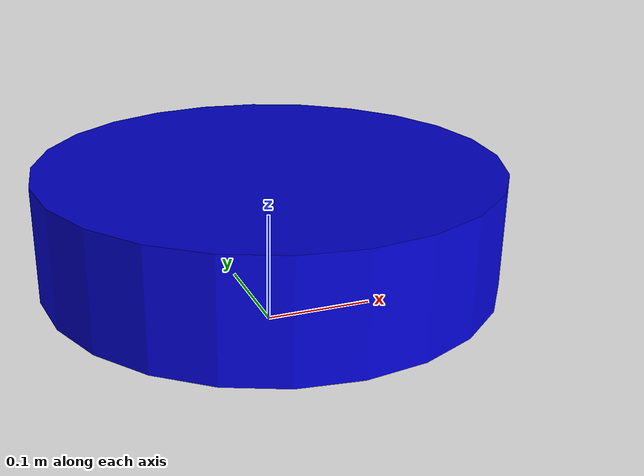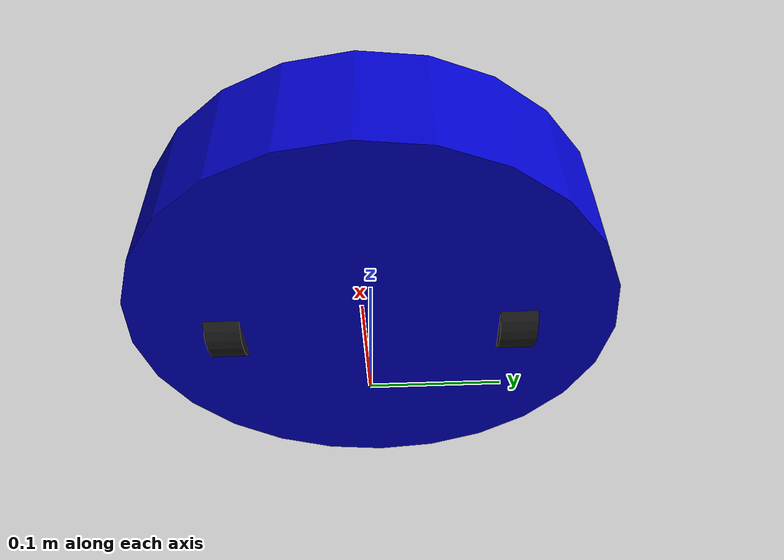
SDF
<?xml version="1.0"?>
<sdf version="1.9">
  <model name="turtlebot">
    <pose>0 0 0.1 0 0 0</pose>

    <link name="base_link">
      <pose>0 0 0 0 0 0</pose>
      <inertial>
        <mass>5.0</mass>
        <inertia>
          <ixx>0.052</ixx>
          <iyy>0.052</iyy>
          <izz>0.1</izz>
        </inertia>
      </inertial>

      <visual name="base_visual">
        <geometry>
          <cylinder>
            <radius>0.2</radius>
            <length>0.1</length>
          </cylinder>
        </geometry>
        <material>
          <ambient>0 0 0.8 1</ambient>
          <diffuse>0 0 0.8 1</diffuse>
        </material>
      </visual>

      <collision name="base_collision">
        <geometry>
          <cylinder>
            <radius>0.2</radius>
            <length>0.1</length>
          </cylinder>
        </geometry>
      </collision>
    </link>

    <link name="left_wheel">
      <pose>0 0.12 -0.025 -1.5708 0 0</pose>
      <inertial>
        <mass>0.5</mass>
        <inertia>
          <ixx>0.00016</ixx>
          <iyy>0.00016</iyy>
          <izz>0.0003</izz>
        </inertia>
      </inertial>

      <visual name="left_wheel_visual">
        <geometry>
          <cylinder>
            <radius>0.035</radius>
            <length>0.03</length>
          </cylinder>
        </geometry>
        <material>
          <ambient>0.1 0.1 0.1 1</ambient>
          <diffuse>0.1 0.1 0.1 1</diffuse>
        </material>
      </visual>

      <collision name="left_wheel_collision">
        <geometry>
          <cylinder>
            <radius>0.035</radius>
            <length>0.03</length>
          </cylinder>
        </geometry>
      </collision>
    </link>

    <link name="right_wheel">
      <pose>0 -0.12 -0.025 -1.5708 0 0</pose>
      <inertial>
        <mass>0.5</mass>
        <inertia>
          <ixx>0.00016</ixx>
          <iyy>0.00016</iyy>
          <izz>0.0003</izz>
        </inertia>
      </inertial>

      <visual name="right_wheel_visual">
        <geometry>
          <cylinder>
            <radius>0.035</radius>
            <length>0.03</length>
          </cylinder>
        </geometry>
        <material>
          <ambient>0.1 0.1 0.1 1</ambient>
          <diffuse>0.1 0.1 0.1 1</diffuse>
        </material>
      </visual>

      <collision name="right_wheel_collision">
        <geometry>
          <cylinder>
            <radius>0.035</radius>
            <length>0.03</length>
          </cylinder>
        </geometry>
      </collision>
    </link>

    <link name="caster_wheel">
      <pose>0.15 0 -0.025 0 0 0</pose>
      <inertial>
        <mass>0.1</mass>
        <inertia>
          <ixx>0.00001</ixx>
          <iyy>0.00001</iyy>
          <izz>0.00001</izz>
        </inertia>
      </inertial>

      <visual name="caster_visual">
        <geometry>
          <sphere>
            <radius>0.02</radius>
          </sphere>
        </geometry>
        <material>
          <ambient>0.5 0.5 0.5 1</ambient>
          <diffuse>0.5 0.5 0.5 1</diffuse>
        </material>
      </visual>

      <collision name="caster_collision">
        <geometry>
          <sphere>
            <radius>0.02</radius>
          </sphere>
        </geometry>
      </collision>
    </link>

    <joint name="left_wheel_joint" type="revolute">
      <parent>base_link</parent>
      <child>left_wheel</child>
      <axis>
        <xyz>0 0 1</xyz>
      </axis>
    </joint>

    <joint name="right_wheel_joint" type="revolute">
      <parent>base_link</parent>
      <child>right_wheel</child>
      <axis>
        <xyz>0 0 1</xyz>
      </axis>
    </joint>

    <joint name="caster_joint" type="fixed">
      <parent>base_link</parent>
      <child>caster_wheel</child>
    </joint>

    <!-- Differential Drive Plugin -->
    <plugin filename="gz-sim-diff-drive-system" name="gz::sim::systems::DiffDrive">
      <left_joint>left_wheel_joint</left_joint>
      <right_joint>right_wheel_joint</right_joint>
      <wheel_separation>0.24</wheel_separation>
      <wheel_radius>0.035</wheel_radius>
      <odom_publish_frequency>50</odom_publish_frequency>
      <topic>cmd_vel</topic>
      <odom_topic>odom</odom_topic>
      <tf_topic>tf</tf_topic>
      <frame_id>odom</frame_id>
      <child_frame_id>base_link</child_frame_id>
    </plugin>

    <!-- IMU Sensor -->
    <link name="imu_link">
      <pose>0 0 0.05 0 0 0</pose>
      <sensor name="imu_sensor" type="imu">
        <always_on>true</always_on>
        <update_rate>100</update_rate>
        <topic>imu</topic>
      </sensor>
    </link>

    <joint name="imu_joint" type="fixed">
      <parent>base_link</parent>
      <child>imu_link</child>
    </joint>

  </model>
</sdf>
